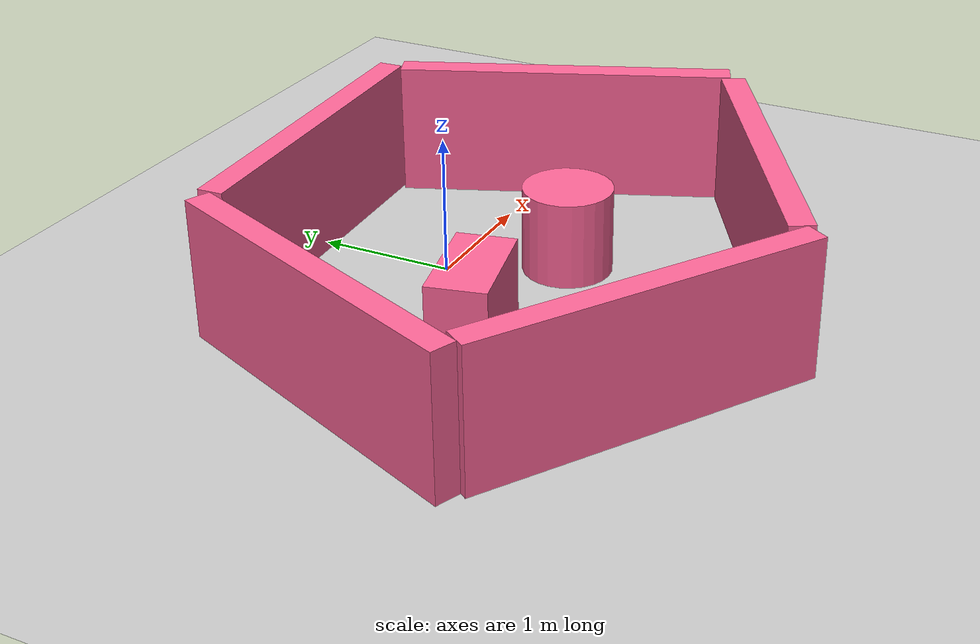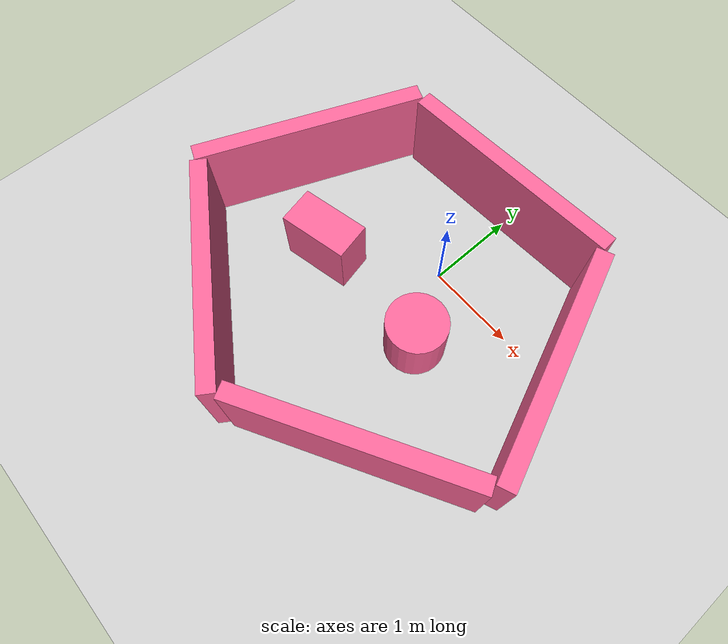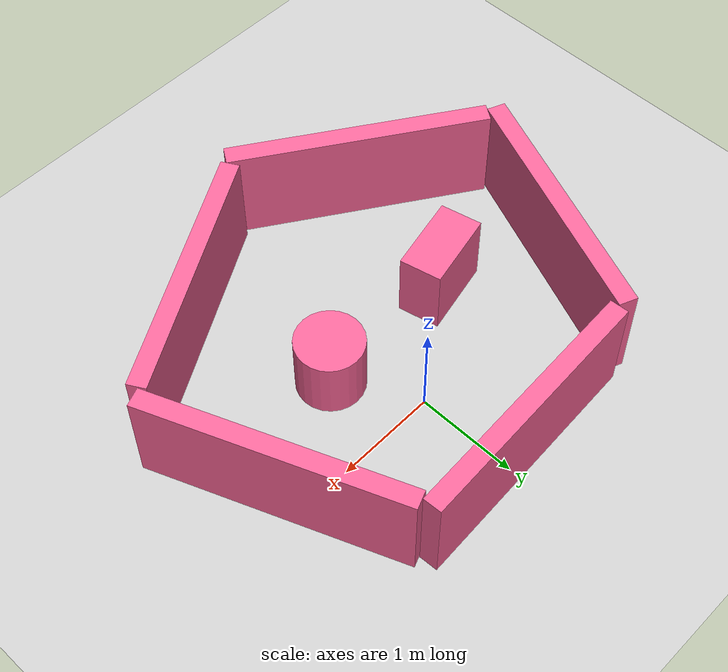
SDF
<sdf version="1.6">
 <world name="default">
  <light name="sun" type="directional">
   <pose>0 0 10 0 -0 0</pose>
   <diffuse>0.8 0.8 0.8 1</diffuse>
   <specular>0.2 0.2 0.2 1</specular>
   <attenuation>
    <range>1000</range>
    <constant>0.9</constant>
    <linear>0.01</linear>
    <quadratic>0.001</quadratic>
   </attenuation>
   <direction>-0.5 0.1 -0.9</direction>
  </light>
  <model name="ground_plane">
   <static>1</static>
   <link name="link">
    <collision name="collision">
     <geometry><plane><normal>0 0 1</normal><size>100 100</size></plane></geometry>
     <surface>
      <contact><collide_bitmask>65535</collide_bitmask></contact>
      <friction><ode><mu>100</mu><mu2>50</mu2></ode></friction>
     </surface>
    </collision>
    <visual name="visual">
     <cast_shadows>0</cast_shadows>
     <geometry><plane><normal>0 0 1</normal><size>100 100</size></plane></geometry>
     <material>
      <script><uri>file://media/materials/scripts/gazebo.material</uri><name>Gazebo/Grey</name></script>
     </material>
    </visual>
   </link>
  </model>
  <gravity>0 0 -9.8</gravity>
  <magnetic_field>6e-06 2.3e-05 -4.2e-05</magnetic_field>
  <atmosphere type="adiabatic"/>
  <physics name="default_physics" default="0" type="ode">
   <max_step_size>0.001</max_step_size>
   <real_time_factor>1</real_time_factor>
   <real_time_update_rate>1000</real_time_update_rate>
  </physics>
  <scene><ambient>0.4 0.4 0.4 1</ambient><background>0.7 0.7 0.7 1</background><shadows>1</shadows></scene>
  <audio><device>default</device></audio>
  <spherical_coordinates>
   <surface_model>EARTH_WGS84</surface_model>
   <latitude_deg>0</latitude_deg>
   <longitude_deg>0</longitude_deg>
   <elevation>0</elevation>
   <heading_deg>0</heading_deg>
  </spherical_coordinates>
  <model name="short__wall">
   <link name="link_3">
    <inertial>
     <mass>0.46004</mass>
     <inertia>
      <ixx>0.0396172</ixx>
      <ixy>0</ixy>
      <ixz>0</ixz>
      <iyy>0.281387</iyy>
      <iyz>0</iyz>
      <izz>0.244331</izz>
     </inertia>
    </inertial>
    <pose>1e-06 -0 0 0 -0 0</pose>
    <visual name="visual">
     <geometry><box><size>2.51792 0.182765 1</size></box></geometry>
     <material>
      <lighting>1</lighting>
      <script><uri>file://media/materials/scripts/gazebo.material</uri><name>Gazebo/Grey</name></script>
      <ambient>1 0.4 0.6 1</ambient>
      <shader type="vertex"><normal_map>__default__</normal_map></shader>
      <diffuse>0.7 0.7 0.7 1</diffuse>
      <specular>0.01 0.01 0.01 1</specular>
      <emissive>0 0 0 1</emissive>
     </material>
    </visual>
    <collision name="collision">
     <geometry><box><size>2.51792 0.182765 1</size></box></geometry>
     <surface>
      <friction>
       <ode><mu>1</mu><mu2>1</mu2><fdir1>0 0 0</fdir1><slip1>0</slip1><slip2>0</slip2></ode>
       <torsional>
        <coefficient>1</coefficient>
        <patch_radius>0</patch_radius>
        <surface_radius>0</surface_radius>
        <use_patch_radius>1</use_patch_radius>
        <ode><slip>0</slip></ode>
       </torsional>
      </friction>
      <bounce><restitution_coefficient>0</restitution_coefficient><threshold>1e+06</threshold></bounce>
      <contact>
       <collide_without_contact>0</collide_without_contact>
       <collide_without_contact_bitmask>1</collide_without_contact_bitmask>
       <collide_bitmask>1</collide_bitmask>
       <ode>
        <soft_cfm>0</soft_cfm>
        <soft_erp>0.2</soft_erp>
        <kp>1e+13</kp>
        <kd>1</kd>
        <max_vel>0.01</max_vel>
        <min_depth>0</min_depth>
       </ode>
       <bullet>
        <split_impulse>1</split_impulse>
        <split_impulse_penetration_threshold>-0.01</split_impulse_penetration_threshold>
        <soft_cfm>0</soft_cfm>
        <soft_erp>0.2</soft_erp>
        <kp>1e+13</kp>
        <kd>1</kd>
       </bullet>
      </contact>
     </surface>
    </collision>
   </link>
   <static>0</static>
   <pose>-0.113319 1.02356 0.499996 0 3e-06 0.053911</pose>
  </model>
  <model name="short__wall_0">
   <link name="link_3">
    <inertial>
     <mass>0.46004</mass>
     <inertia>
      <ixx>0.0396172</ixx>
      <ixy>0</ixy>
      <ixz>0</ixz>
      <iyy>0.281387</iyy>
      <iyz>0</iyz>
      <izz>0.244331</izz>
     </inertia>
    </inertial>
    <pose>1e-06 -0 0 0 -0 0</pose>
    <visual name="visual">
     <geometry><box><size>2.51792 0.182765 1</size></box></geometry>
     <material>
      <lighting>1</lighting>
      <script><uri>file://media/materials/scripts/gazebo.material</uri><name>Gazebo/Grey</name></script>
      <ambient>1 0.4 0.6 1</ambient>
      <shader type="vertex"><normal_map>__default__</normal_map></shader>
      <diffuse>0.7 0.7 0.7 1</diffuse>
      <specular>0.01 0.01 0.01 1</specular>
      <emissive>0 0 0 1</emissive>
     </material>
    </visual>
    <collision name="collision">
     <geometry><box><size>2.51792 0.182765 1</size></box></geometry>
     <surface>
      <friction>
       <ode><mu>1</mu><mu2>1</mu2><fdir1>0 0 0</fdir1><slip1>0</slip1><slip2>0</slip2></ode>
       <torsional>
        <coefficient>1</coefficient>
        <patch_radius>0</patch_radius>
        <surface_radius>0</surface_radius>
        <use_patch_radius>1</use_patch_radius>
        <ode><slip>0</slip></ode>
       </torsional>
      </friction>
      <bounce><restitution_coefficient>0</restitution_coefficient><threshold>1e+06</threshold></bounce>
      <contact>
       <collide_without_contact>0</collide_without_contact>
       <collide_without_contact_bitmask>1</collide_without_contact_bitmask>
       <collide_bitmask>1</collide_bitmask>
       <ode>
        <soft_cfm>0</soft_cfm>
        <soft_erp>0.2</soft_erp>
        <kp>1e+13</kp>
        <kd>1</kd>
        <max_vel>0.01</max_vel>
        <min_depth>0</min_depth>
       </ode>
       <bullet>
        <split_impulse>1</split_impulse>
        <split_impulse_penetration_threshold>-0.01</split_impulse_penetration_threshold>
        <soft_cfm>0</soft_cfm>
        <soft_erp>0.2</soft_erp>
        <kp>1e+13</kp>
        <kd>1</kd>
       </bullet>
      </contact>
     </surface>
    </collision>
   </link>
   <static>0</static>
   <pose>-1.94203 -0.18184 0.499996 0 3e-06 -1.96145</pose>
  </model>
  <model name="short__wall_1">
   <link name="link_3">
    <inertial>
     <mass>0.46004</mass>
     <inertia>
      <ixx>0.0396172</ixx>
      <ixy>0</ixy>
      <ixz>0</ixz>
      <iyy>0.281387</iyy>
      <iyz>0</iyz>
      <izz>0.244331</izz>
     </inertia>
    </inertial>
    <pose>1e-06 -0 0 0 -0 0</pose>
    <visual name="visual">
     <geometry><box><size>2.51792 0.182765 1</size></box></geometry>
     <material>
      <lighting>1</lighting>
      <script><uri>file://media/materials/scripts/gazebo.material</uri><name>Gazebo/Grey</name></script>
      <ambient>1 0.4 0.6 1</ambient>
      <shader type="vertex"><normal_map>__default__</normal_map></shader>
      <diffuse>0.7 0.7 0.7 1</diffuse>
      <specular>0.01 0.01 0.01 1</specular>
      <emissive>0 0 0 1</emissive>
     </material>
    </visual>
    <collision name="collision">
     <geometry><box><size>2.51792 0.182765 1</size></box></geometry>
     <surface>
      <friction>
       <ode><mu>1</mu><mu2>1</mu2><fdir1>0 0 0</fdir1><slip1>0</slip1><slip2>0</slip2></ode>
       <torsional>
        <coefficient>1</coefficient>
        <patch_radius>0</patch_radius>
        <surface_radius>0</surface_radius>
        <use_patch_radius>1</use_patch_radius>
        <ode><slip>0</slip></ode>
       </torsional>
      </friction>
      <bounce><restitution_coefficient>0</restitution_coefficient><threshold>1e+06</threshold></bounce>
      <contact>
       <collide_without_contact>0</collide_without_contact>
       <collide_without_contact_bitmask>1</collide_without_contact_bitmask>
       <collide_bitmask>1</collide_bitmask>
       <ode>
        <soft_cfm>0</soft_cfm>
        <soft_erp>0.2</soft_erp>
        <kp>1e+13</kp>
        <kd>1</kd>
        <max_vel>0.01</max_vel>
        <min_depth>0</min_depth>
       </ode>
       <bullet>
        <split_impulse>1</split_impulse>
        <split_impulse_penetration_threshold>-0.01</split_impulse_penetration_threshold>
        <soft_cfm>0</soft_cfm>
        <soft_erp>0.2</soft_erp>
        <kp>1e+13</kp>
        <kd>1</kd>
       </bullet>
      </contact>
     </surface>
    </collision>
   </link>
   <static>0</static>
   <pose>1.62899 -0.168356 0.499996 0 3e-06 -1.19084</pose>
  </model>
  <model name="short__wall_2">
   <link name="link_3">
    <inertial>
     <mass>0.46004</mass>
     <inertia>
      <ixx>0.0396172</ixx>
      <ixy>0</ixy>
      <ixz>0</ixz>
      <iyy>0.281387</iyy>
      <iyz>0</iyz>
      <izz>0.244331</izz>
     </inertia>
    </inertial>
    <pose>1e-06 -0 0 0 -0 0</pose>
    <visual name="visual">
     <geometry><box><size>2.51792 0.182765 1</size></box></geometry>
     <material>
      <lighting>1</lighting>
      <script><uri>file://media/materials/scripts/gazebo.material</uri><name>Gazebo/Grey</name></script>
      <ambient>1 0.4 0.6 1</ambient>
      <shader type="vertex"><normal_map>__default__</normal_map></shader>
      <diffuse>0.7 0.7 0.7 1</diffuse>
      <specular>0.01 0.01 0.01 1</specular>
      <emissive>0 0 0 1</emissive>
     </material>
    </visual>
    <collision name="collision">
     <geometry><box><size>2.51792 0.182765 1</size></box></geometry>
     <surface>
      <friction>
       <ode><mu>1</mu><mu2>1</mu2><fdir1>0 0 0</fdir1><slip1>0</slip1><slip2>0</slip2></ode>
       <torsional>
        <coefficient>1</coefficient>
        <patch_radius>0</patch_radius>
        <surface_radius>0</surface_radius>
        <use_patch_radius>1</use_patch_radius>
        <ode><slip>0</slip></ode>
       </torsional>
      </friction>
      <bounce><restitution_coefficient>0</restitution_coefficient><threshold>1e+06</threshold></bounce>
      <contact>
       <collide_without_contact>0</collide_without_contact>
       <collide_without_contact_bitmask>1</collide_without_contact_bitmask>
       <collide_bitmask>1</collide_bitmask>
       <ode>
        <soft_cfm>0</soft_cfm>
        <soft_erp>0.2</soft_erp>
        <kp>1e+13</kp>
        <kd>1</kd>
        <max_vel>0.01</max_vel>
        <min_depth>0</min_depth>
       </ode>
       <bullet>
        <split_impulse>1</split_impulse>
        <split_impulse_penetration_threshold>-0.01</split_impulse_penetration_threshold>
        <soft_cfm>0</soft_cfm>
        <soft_erp>0.2</soft_erp>
        <kp>1e+13</kp>
        <kd>1</kd>
       </bullet>
      </contact>
     </surface>
    </collision>
   </link>
   <static>0</static>
   <pose>-1.26487 -2.04328 0.499535 -0 -4e-06 -0.583259</pose>
  </model>
  <model name="short__wall_3">
   <link name="link_3">
    <inertial>
     <mass>0.46004</mass>
     <inertia>
      <ixx>0.0396172</ixx>
      <ixy>0</ixy>
      <ixz>0</ixz>
      <iyy>0.281387</iyy>
      <iyz>0</iyz>
      <izz>0.244331</izz>
     </inertia>
    </inertial>
    <pose>1e-06 -0 0 0 -0 0</pose>
    <visual name="visual">
     <geometry><box><size>2.51792 0.182765 1</size></box></geometry>
     <material>
      <lighting>1</lighting>
      <script><uri>file://media/materials/scripts/gazebo.material</uri><name>Gazebo/Grey</name></script>
      <ambient>1 0.4 0.6 1</ambient>
      <shader type="vertex"><normal_map>__default__</normal_map></shader>
      <diffuse>0.7 0.7 0.7 1</diffuse>
      <specular>0.01 0.01 0.01 1</specular>
      <emissive>0 0 0 1</emissive>
     </material>
    </visual>
    <collision name="collision">
     <geometry><box><size>2.51792 0.182765 1</size></box></geometry>
     <surface>
      <friction>
       <ode><mu>1</mu><mu2>1</mu2><fdir1>0 0 0</fdir1><slip1>0</slip1><slip2>0</slip2></ode>
       <torsional>
        <coefficient>1</coefficient>
        <patch_radius>0</patch_radius>
        <surface_radius>0</surface_radius>
        <use_patch_radius>1</use_patch_radius>
        <ode><slip>0</slip></ode>
       </torsional>
      </friction>
      <bounce><restitution_coefficient>0</restitution_coefficient><threshold>1e+06</threshold></bounce>
      <contact>
       <collide_without_contact>0</collide_without_contact>
       <collide_without_contact_bitmask>1</collide_without_contact_bitmask>
       <collide_bitmask>1</collide_bitmask>
       <ode>
        <soft_cfm>0</soft_cfm>
        <soft_erp>0.2</soft_erp>
        <kp>1e+13</kp>
        <kd>1</kd>
        <max_vel>0.01</max_vel>
        <min_depth>0</min_depth>
       </ode>
       <bullet>
        <split_impulse>1</split_impulse>
        <split_impulse_penetration_threshold>-0.01</split_impulse_penetration_threshold>
        <soft_cfm>0</soft_cfm>
        <soft_erp>0.2</soft_erp>
        <kp>1e+13</kp>
        <kd>1</kd>
       </bullet>
      </contact>
     </surface>
    </collision>
   </link>
   <static>0</static>
   <pose>0.914939 -2.0102 0.499997 -1e-06 -3e-06 0.514323</pose>
  </model>
  <model name="cilinder_obstacle">
   <link name="link_6">
    <inertial>
     <mass>0.268073</mass>
     <inertia>
      <ixx>0.0160444</ixx>
      <ixy>0</ixy>
      <ixz>0</ixz>
      <iyy>0.0160444</iyy>
      <iyz>0</iyz>
      <izz>0.0141946</izz>
     </inertia>
    </inertial>
    <pose>2.29761 0.283138 0.5 0 -0 0</pose>
    <visual name="visual">
     <geometry><cylinder><radius>0.325425</radius><length>0.632856</length></cylinder></geometry>
     <material>
      <lighting>1</lighting>
      <script><uri>file://media/materials/scripts/gazebo.material</uri><name>Gazebo/Grey</name></script>
      <ambient>1 0.4 0.6 1</ambient>
      <shader type="vertex"><normal_map>__default__</normal_map></shader>
      <diffuse>0.7 0.7 0.7 1</diffuse>
      <specular>0.01 0.01 0.01 1</specular>
      <emissive>0 0 0 1</emissive>
     </material>
    </visual>
    <collision name="collision">
     <geometry><cylinder><radius>0.325425</radius><length>0.632856</length></cylinder></geometry>
     <surface>
      <friction>
       <ode><mu>1</mu><mu2>1</mu2><fdir1>0 0 0</fdir1><slip1>0</slip1><slip2>0</slip2></ode>
       <torsional>
        <coefficient>1</coefficient>
        <patch_radius>0</patch_radius>
        <surface_radius>0</surface_radius>
        <use_patch_radius>1</use_patch_radius>
        <ode><slip>0</slip></ode>
       </torsional>
      </friction>
      <bounce><restitution_coefficient>0</restitution_coefficient><threshold>1e+06</threshold></bounce>
      <contact>
       <collide_without_contact>0</collide_without_contact>
       <collide_without_contact_bitmask>1</collide_without_contact_bitmask>
       <collide_bitmask>1</collide_bitmask>
       <ode>
        <soft_cfm>0</soft_cfm>
        <soft_erp>0.2</soft_erp>
        <kp>1e+13</kp>
        <kd>1</kd>
        <max_vel>0.01</max_vel>
        <min_depth>0</min_depth>
       </ode>
       <bullet>
        <split_impulse>1</split_impulse>
        <split_impulse_penetration_threshold>-0.01</split_impulse_penetration_threshold>
        <soft_cfm>0</soft_cfm>
        <soft_erp>0.2</soft_erp>
        <kp>1e+13</kp>
        <kd>1</kd>
       </bullet>
      </contact>
     </surface>
    </collision>
   </link>
   <static>0</static>
   <pose>-1.87998 -1.04315 -0.183582 5e-06 -3e-06 0</pose>
  </model>
  <model name="short__wall_4">
   <link name="link_3">
    <inertial>
     <mass>0.46004</mass>
     <inertia>
      <ixx>0.0396172</ixx>
      <ixy>0</ixy>
      <ixz>0</ixz>
      <iyy>0.281387</iyy>
      <iyz>0</iyz>
      <izz>0.244331</izz>
     </inertia>
    </inertial>
    <pose>1e-06 -0 0 0 -0 0</pose>
    <visual name="visual">
     <geometry><box><size>0.759951 0.412501 0.713958</size></box></geometry>
     <material>
      <lighting>1</lighting>
      <script><uri>file://media/materials/scripts/gazebo.material</uri><name>Gazebo/Grey</name></script>
      <ambient>1 0.4 0.6 1</ambient>
      <shader type="vertex"><normal_map>__default__</normal_map></shader>
      <diffuse>0.7 0.7 0.7 1</diffuse>
      <specular>0.01 0.01 0.01 1</specular>
      <emissive>0 0 0 1</emissive>
     </material>
    </visual>
    <collision name="collision">
     <geometry><box><size>0.759951 0.412501 0.713958</size></box></geometry>
     <surface>
      <friction>
       <ode><mu>1</mu><mu2>1</mu2><fdir1>0 0 0</fdir1><slip1>0</slip1><slip2>0</slip2></ode>
       <torsional>
        <coefficient>1</coefficient>
        <patch_radius>0</patch_radius>
        <surface_radius>0</surface_radius>
        <use_patch_radius>1</use_patch_radius>
        <ode><slip>0</slip></ode>
       </torsional>
      </friction>
      <bounce><restitution_coefficient>0</restitution_coefficient><threshold>1e+06</threshold></bounce>
      <contact>
       <collide_without_contact>0</collide_without_contact>
       <collide_without_contact_bitmask>1</collide_without_contact_bitmask>
       <collide_bitmask>1</collide_bitmask>
       <ode>
        <soft_cfm>0</soft_cfm>
        <soft_erp>0.2</soft_erp>
        <kp>1e+13</kp>
        <kd>1</kd>
        <max_vel>0.01</max_vel>
        <min_depth>0</min_depth>
       </ode>
       <bullet>
        <split_impulse>1</split_impulse>
        <split_impulse_penetration_threshold>-0.01</split_impulse_penetration_threshold>
        <soft_cfm>0</soft_cfm>
        <soft_erp>0.2</soft_erp>
        <kp>1e+13</kp>
        <kd>1</kd>
       </bullet>
      </contact>
     </surface>
    </collision>
   </link>
   <static>0</static>
   <pose>-1.016 -0.758799 0.356979 0 -0 0.221358</pose>
  </model>
 </world>
</sdf>
